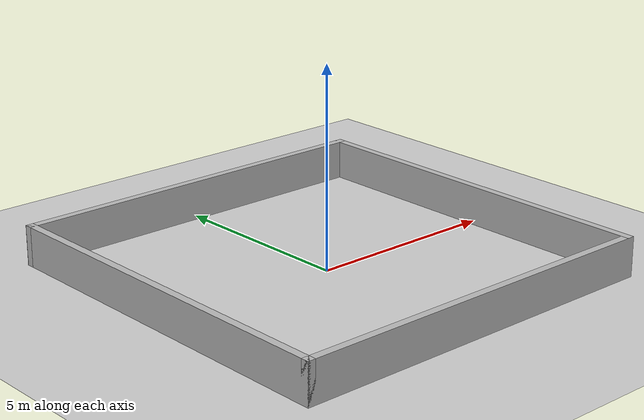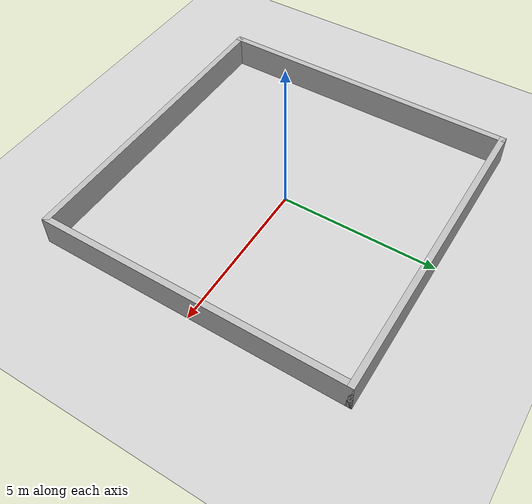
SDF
<?xml version="1.0"?>
<sdf version="1.6">
  <world name="resilient_amr_experiment_arena">
    <include><uri>model://ground_plane</uri></include>
    <include><uri>model://sun</uri></include>
    <scene><shadows>false</shadows></scene>
    <physics type="ode">
      <max_step_size>0.001</max_step_size>
      <real_time_factor>1</real_time_factor>
    </physics>
    <model name="arena_walls">
      <static>true</static>
      <link name="south">
        <pose>0 -4.9 0.5 0 0 0</pose>
        <collision name="collision"><geometry><box><size>10 0.2 1</size></box></geometry></collision>
        <visual name="visual"><geometry><box><size>10 0.2 1</size></box></geometry></visual>
      </link>
      <link name="north">
        <pose>0 4.9 0.5 0 0 0</pose>
        <collision name="collision"><geometry><box><size>10 0.2 1</size></box></geometry></collision>
        <visual name="visual"><geometry><box><size>10 0.2 1</size></box></geometry></visual>
      </link>
      <link name="west">
        <pose>-4.9 0 0.5 0 0 0</pose>
        <collision name="collision"><geometry><box><size>0.2 10 1</size></box></geometry></collision>
        <visual name="visual"><geometry><box><size>0.2 10 1</size></box></geometry></visual>
      </link>
      <link name="east">
        <pose>4.9 0 0.5 0 0 0</pose>
        <collision name="collision"><geometry><box><size>0.2 10 1</size></box></geometry></collision>
        <visual name="visual"><geometry><box><size>0.2 10 1</size></box></geometry></visual>
      </link>
    </model>
  </world>
</sdf>
